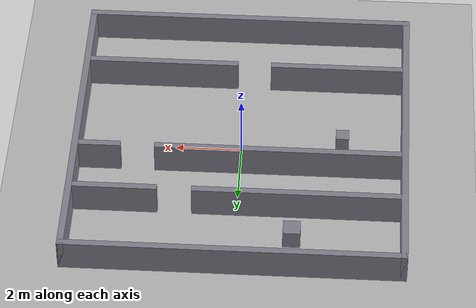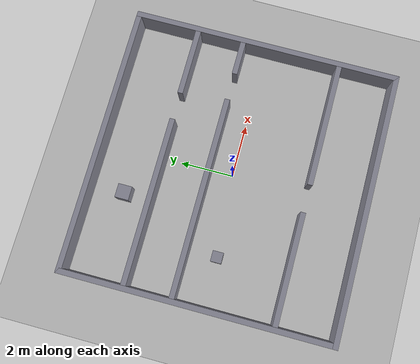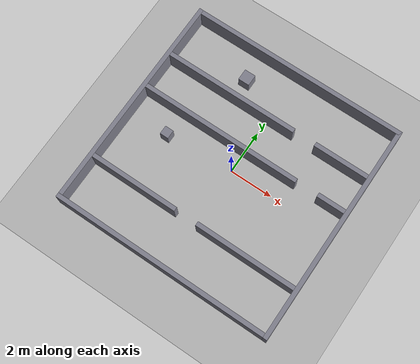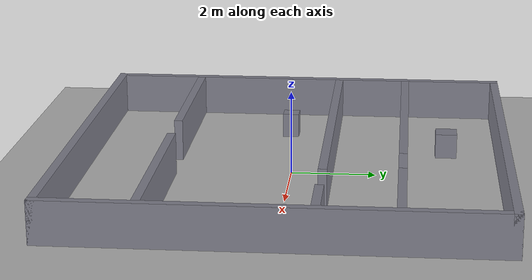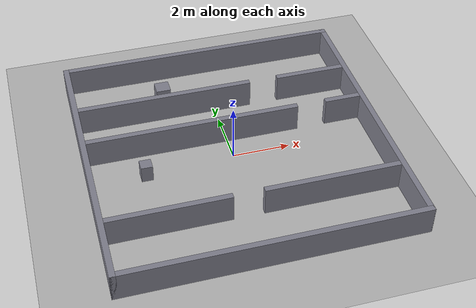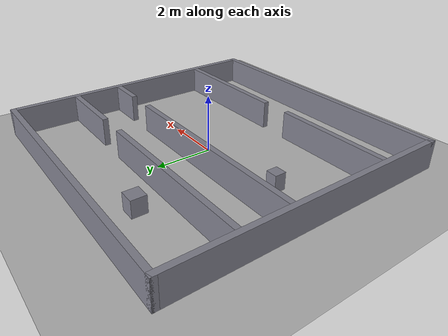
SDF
<?xml version="1.0"?>
<sdf version="1.10">
  <world name="scenario_5">
    <physics name="fast" type="ignored">
      <max_step_size>0.005</max_step_size>
      <real_time_factor>1.0</real_time_factor>
      <real_time_update_rate>200</real_time_update_rate>
    </physics>
    <plugin filename="gz-sim-physics-system" name="gz::sim::systems::Physics"/>
    <plugin filename="gz-sim-user-commands-system" name="gz::sim::systems::UserCommands"/>
    <plugin filename="gz-sim-scene-broadcaster-system" name="gz::sim::systems::SceneBroadcaster"/>
    <plugin filename="gz-sim-sensors-system" name="gz::sim::systems::Sensors">
      <render_engine>ogre2</render_engine>
    </plugin>
    <light type="directional" name="sun">
      <cast_shadows>false</cast_shadows>
      <pose>0 0 10 0 0 0</pose>
      <diffuse>0.9 0.9 0.9 1</diffuse>
      <direction>-0.5 0.2 -0.9</direction>
    </light>
    <model name="ground_plane">
      <static>true</static>
      <link name="link">
        <collision name="c"><geometry><plane><normal>0 0 1</normal><size>20 20</size></plane></geometry></collision>
        <visual name="v"><geometry><plane><normal>0 0 1</normal><size>20 20</size></plane></geometry>
          <material><ambient>0.7 0.7 0.7 1</ambient><diffuse>0.7 0.7 0.7 1</diffuse></material></visual>
      </link>
    </model>
    <model name="box_0">
      <static>true</static>
      <pose>0.0 5.0 0.5 0 0 0</pose>
      <link name="link">
        <collision name="c"><geometry><box><size>10.2 0.2 1.0</size></box></geometry></collision>
        <visual name="v"><geometry><box><size>10.2 0.2 1.0</size></box></geometry>
          <material><ambient>0.5 0.5 0.55 1</ambient><diffuse>0.5 0.5 0.55 1</diffuse></material></visual>
      </link>
    </model>
    <model name="box_1">
      <static>true</static>
      <pose>0.0 -5.0 0.5 0 0 0</pose>
      <link name="link">
        <collision name="c"><geometry><box><size>10.2 0.2 1.0</size></box></geometry></collision>
        <visual name="v"><geometry><box><size>10.2 0.2 1.0</size></box></geometry>
          <material><ambient>0.5 0.5 0.55 1</ambient><diffuse>0.5 0.5 0.55 1</diffuse></material></visual>
      </link>
    </model>
    <model name="box_2">
      <static>true</static>
      <pose>5.0 0.0 0.5 0 0 0</pose>
      <link name="link">
        <collision name="c"><geometry><box><size>0.2 10.2 1.0</size></box></geometry></collision>
        <visual name="v"><geometry><box><size>0.2 10.2 1.0</size></box></geometry>
          <material><ambient>0.5 0.5 0.55 1</ambient><diffuse>0.5 0.5 0.55 1</diffuse></material></visual>
      </link>
    </model>
    <model name="box_3">
      <static>true</static>
      <pose>-5.0 0.0 0.5 0 0 0</pose>
      <link name="link">
        <collision name="c"><geometry><box><size>0.2 10.2 1.0</size></box></geometry></collision>
        <visual name="v"><geometry><box><size>0.2 10.2 1.0</size></box></geometry>
          <material><ambient>0.5 0.5 0.55 1</ambient><diffuse>0.5 0.5 0.55 1</diffuse></material></visual>
      </link>
    </model>
    <model name="box_4">
      <static>true</static>
      <pose>-1.7790925157564683 2.65 0.5 0 0 0</pose>
      <link name="link">
        <collision name="c"><geometry><box><size>6.2418149684870645 0.2 1.0</size></box></geometry></collision>
        <visual name="v"><geometry><box><size>6.2418149684870645 0.2 1.0</size></box></geometry>
          <material><ambient>0.5 0.5 0.55 1</ambient><diffuse>0.5 0.5 0.55 1</diffuse></material></visual>
      </link>
    </model>
    <model name="box_5">
      <static>true</static>
      <pose>3.635907484243532 2.65 0.5 0 0 0</pose>
      <link name="link">
        <collision name="c"><geometry><box><size>2.5281850315129364 0.2 1.0</size></box></geometry></collision>
        <visual name="v"><geometry><box><size>2.5281850315129364 0.2 1.0</size></box></geometry>
          <material><ambient>0.5 0.5 0.55 1</ambient><diffuse>0.5 0.5 0.55 1</diffuse></material></visual>
      </link>
    </model>
    <model name="box_6">
      <static>true</static>
      <pose>-2.8405403275567322 -2.83 0.5 0 0 0</pose>
      <link name="link">
        <collision name="c"><geometry><box><size>4.118919344886536 0.2 1.0</size></box></geometry></collision>
        <visual name="v"><geometry><box><size>4.118919344886536 0.2 1.0</size></box></geometry>
          <material><ambient>0.5 0.5 0.55 1</ambient><diffuse>0.5 0.5 0.55 1</diffuse></material></visual>
      </link>
    </model>
    <model name="box_7">
      <static>true</static>
      <pose>2.574459672443268 -2.83 0.5 0 0 0</pose>
      <link name="link">
        <collision name="c"><geometry><box><size>4.651080655113465 0.2 1.0</size></box></geometry></collision>
        <visual name="v"><geometry><box><size>4.651080655113465 0.2 1.0</size></box></geometry>
          <material><ambient>0.5 0.5 0.55 1</ambient><diffuse>0.5 0.5 0.55 1</diffuse></material></visual>
      </link>
    </model>
    <model name="box_8">
      <static>true</static>
      <pose>-1.1560150969250904 0.89 0.5 0 0 0</pose>
      <link name="link">
        <collision name="c"><geometry><box><size>7.48796980614982 0.2 1.0</size></box></geometry></collision>
        <visual name="v"><geometry><box><size>7.48796980614982 0.2 1.0</size></box></geometry>
          <material><ambient>0.5 0.5 0.55 1</ambient><diffuse>0.5 0.5 0.55 1</diffuse></material></visual>
      </link>
    </model>
    <model name="box_9">
      <static>true</static>
      <pose>4.25898490307491 0.89 0.5 0 0 0</pose>
      <link name="link">
        <collision name="c"><geometry><box><size>1.2820301938501806 0.2 1.0</size></box></geometry></collision>
        <visual name="v"><geometry><box><size>1.2820301938501806 0.2 1.0</size></box></geometry>
          <material><ambient>0.5 0.5 0.55 1</ambient><diffuse>0.5 0.5 0.55 1</diffuse></material></visual>
      </link>
    </model>
    <model name="box_10">
      <static>true</static>
      <pose>-3.09 -0.25 0.3 0 0 0</pose>
      <link name="link">
        <collision name="c"><geometry><box><size>0.4 0.4 0.6</size></box></geometry></collision>
        <visual name="v"><geometry><box><size>0.4 0.4 0.6</size></box></geometry>
          <material><ambient>0.5 0.5 0.55 1</ambient><diffuse>0.5 0.5 0.55 1</diffuse></material></visual>
      </link>
    </model>
    <model name="box_11">
      <static>true</static>
      <pose>-1.69 3.69 0.3 0 0 0</pose>
      <link name="link">
        <collision name="c"><geometry><box><size>0.52 0.52 0.6</size></box></geometry></collision>
        <visual name="v"><geometry><box><size>0.52 0.52 0.6</size></box></geometry>
          <material><ambient>0.5 0.5 0.55 1</ambient><diffuse>0.5 0.5 0.55 1</diffuse></material></visual>
      </link>
    </model>
  </world>
</sdf>
